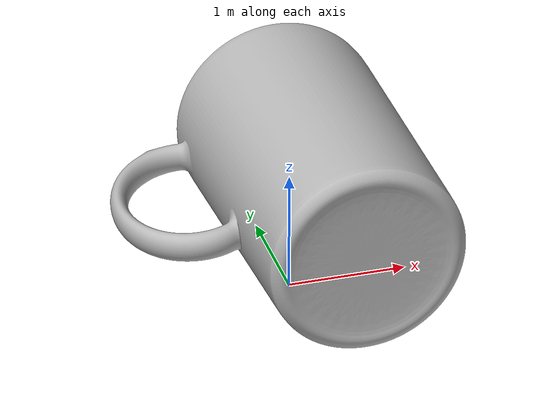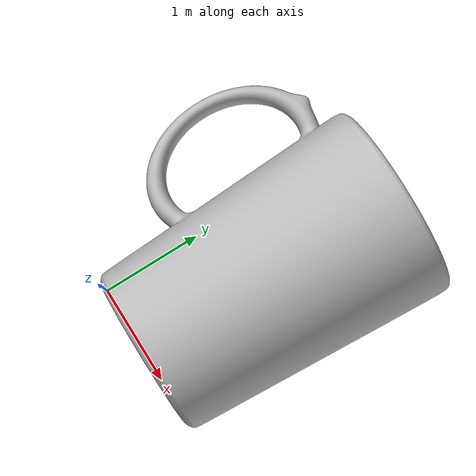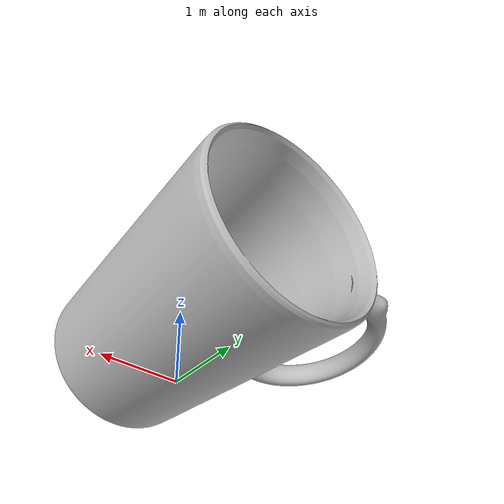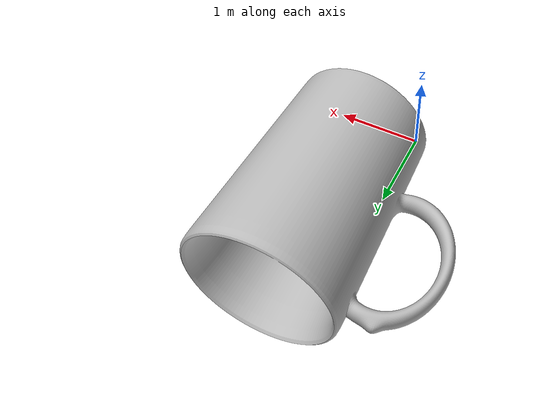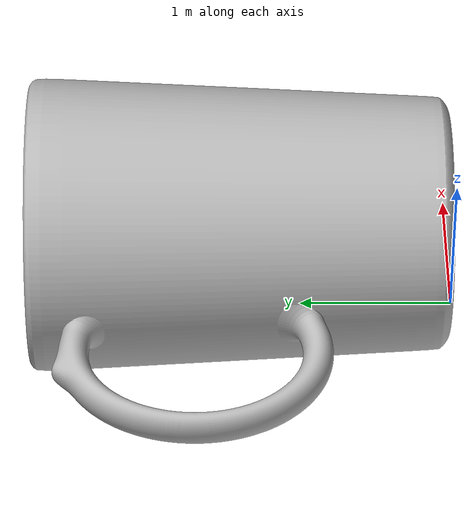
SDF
<?xml version="1.0"?>
<sdf version="1.5">
    <model name="teacup_model">
        <pose>0 0.0 0.0 0 0 0</pose>
        <static>false</static>
        <link name="body">
            <collision name="collision">
	            <geometry>
		            <box><size>2.80866 2.81665 1.97164</size></box>
	            </geometry>
            </collision>
            <visual name="visual">
                <geometry>
		            <mesh>
		                <uri>TeaCup.obj</uri>
		            </mesh>
                </geometry>
            </visual>
        </link>
    </model>
</sdf>
